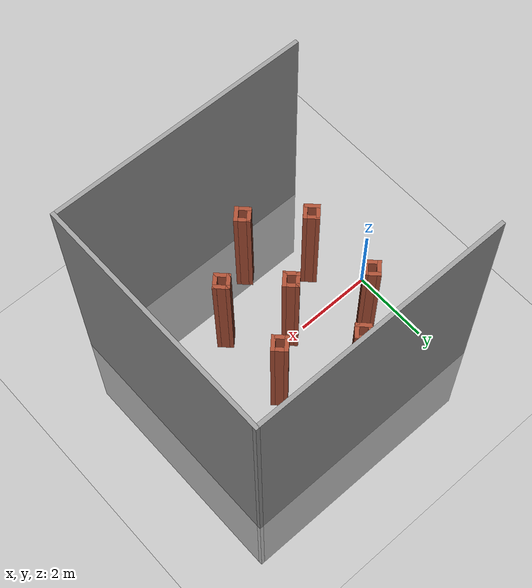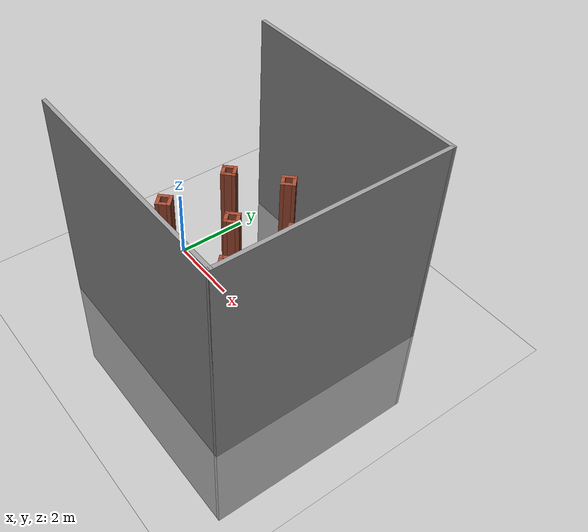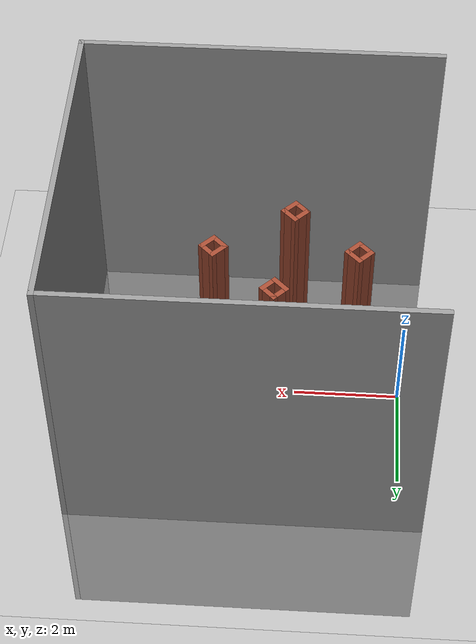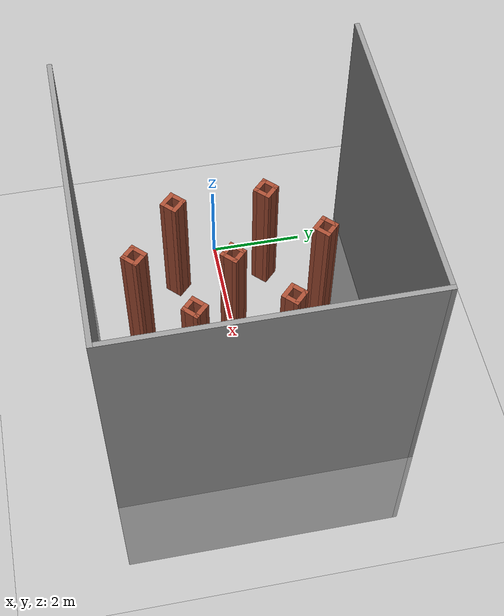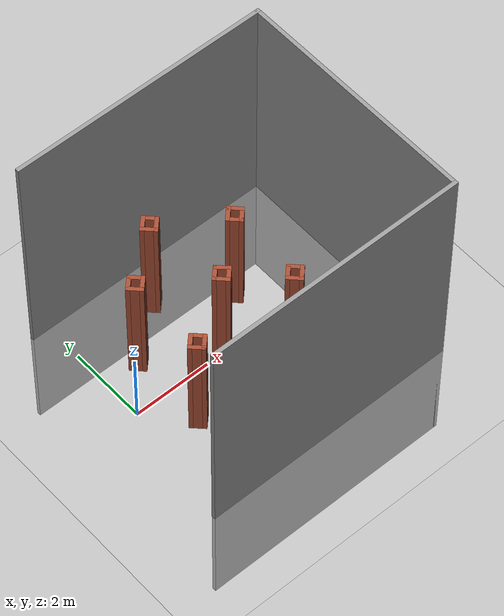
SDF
<sdf version="1.7">
 <world name="default">
  <light name="sun" type="directional">
   <pose>0 0 10 0 -0 0</pose>
   <diffuse>0.8 0.8 0.8 1</diffuse>
   <specular>0.2 0.2 0.2 1</specular>
   <attenuation>
    <range>1000</range>
    <constant>0.9</constant>
    <linear>0.01</linear>
    <quadratic>0.001</quadratic>
   </attenuation>
   <direction>-0.5 0.1 -0.9</direction>
   <spot><inner_angle>0</inner_angle><outer_angle>0</outer_angle><falloff>0</falloff></spot>
  </light>
  <model name="ground_plane">
   <static>1</static>
   <link name="link">
    <collision name="collision">
     <geometry><plane><normal>0 0 1</normal><size>100 100</size></plane></geometry>
     <surface>
      <contact><collide_bitmask>65535</collide_bitmask></contact>
      <friction><ode><mu>100</mu><mu2>50</mu2></ode></friction>
     </surface>
    </collision>
    <visual name="visual">
     <cast_shadows>0</cast_shadows>
     <geometry><plane><normal>0 0 1</normal><size>100 100</size></plane></geometry>
     <material>
      <script><uri>file://media/materials/scripts/gazebo.material</uri><name>Gazebo/Grey</name></script>
     </material>
    </visual>
   </link>
  </model>
  <gravity>0 0 -9.8</gravity>
  <magnetic_field>6e-06 2.3e-05 -4.2e-05</magnetic_field>
  <atmosphere type="adiabatic"/>
  <physics type="ode">
   <max_step_size>0.001</max_step_size>
   <real_time_factor>1</real_time_factor>
   <real_time_update_rate>1000</real_time_update_rate>
  </physics>
  <scene><ambient>0.4 0.4 0.4 1</ambient><background>0.7 0.7 0.7 1</background><shadows>1</shadows></scene>
  <spherical_coordinates>
   <surface_model>EARTH_WGS84</surface_model>
   <latitude_deg>0</latitude_deg>
   <longitude_deg>0</longitude_deg>
   <elevation>0</elevation>
   <heading_deg>0</heading_deg>
  </spherical_coordinates>
  <model name="outer_walls">
   <link name="Wall_4">
    <pose>0 -3.05 0 0 -0 0</pose>
    <inertial>
     <mass>1</mass>
     <inertia><ixx>1</ixx><ixy>0</ixy><ixz>0</ixz><iyy>1</iyy><iyz>0</iyz><izz>1</izz></inertia>
    </inertial>
    <visual name="Wall_4_Visual">
     <pose>0 0 1.5 0 -0 0</pose>
     <geometry><box><size>6.6 0.1 9</size></box></geometry>
     <material>
      <script><uri>file://media/materials/scripts/gazebo.material</uri><name>Gazebo/Grey</name></script>
      <ambient>1 1 1 1</ambient>
      <shader type="pixel"><normal_map>__default__</normal_map></shader>
      <diffuse>0.7 0.7 0.7 1</diffuse>
      <specular>0.01 0.01 0.01 1</specular>
      <emissive>0 0 0 1</emissive>
     </material>
     <meta><layer>0</layer></meta>
    </visual>
    <collision name="Wall_4_Collision">
     <pose>0 0 1.5 0 -0 0</pose>
     <geometry><box><size>6.6 0.1 9</size></box></geometry>
     <surface>
      <friction>
       <ode><mu>1</mu><mu2>1</mu2><fdir1>0 0 0</fdir1><slip1>0</slip1><slip2>0</slip2></ode>
       <torsional>
        <coefficient>1</coefficient>
        <patch_radius>0</patch_radius>
        <surface_radius>0</surface_radius>
        <use_patch_radius>1</use_patch_radius>
        <ode><slip>0</slip></ode>
       </torsional>
      </friction>
      <bounce><restitution_coefficient>0</restitution_coefficient><threshold>1e+06</threshold></bounce>
      <contact>
       <collide_without_contact>0</collide_without_contact>
       <collide_without_contact_bitmask>1</collide_without_contact_bitmask>
       <collide_bitmask>1</collide_bitmask>
       <ode>
        <soft_cfm>0</soft_cfm>
        <soft_erp>0.2</soft_erp>
        <kp>1e+13</kp>
        <kd>1</kd>
        <max_vel>0.01</max_vel>
        <min_depth>0</min_depth>
       </ode>
       <bullet>
        <split_impulse>1</split_impulse>
        <split_impulse_penetration_threshold>-0.01</split_impulse_penetration_threshold>
        <soft_cfm>0</soft_cfm>
        <soft_erp>0.2</soft_erp>
        <kp>1e+13</kp>
        <kd>1</kd>
       </bullet>
      </contact>
     </surface>
    </collision>
   </link>
   <link name="Wall_6">
    <pose>3.25 0 0 0 -0 1.5708</pose>
    <inertial>
     <mass>1</mass>
     <inertia><ixx>1</ixx><ixy>0</ixy><ixz>0</ixz><iyy>1</iyy><iyz>0</iyz><izz>1</izz></inertia>
    </inertial>
    <visual name="Wall_6_Visual">
     <pose>0 0 1.5 0 -0 0</pose>
     <geometry><box><size>6.2 0.1 9</size></box></geometry>
     <material>
      <script><uri>file://media/materials/scripts/gazebo.material</uri><name>Gazebo/Grey</name></script>
      <ambient>1 1 1 1</ambient>
      <shader type="pixel"><normal_map>__default__</normal_map></shader>
      <diffuse>0.7 0.7 0.7 1</diffuse>
      <specular>0.01 0.01 0.01 1</specular>
      <emissive>0 0 0 1</emissive>
     </material>
     <meta><layer>0</layer></meta>
    </visual>
    <collision name="Wall_6_Collision">
     <pose>0 0 1.5 0 -0 0</pose>
     <geometry><box><size>6.2 0.1 9</size></box></geometry>
     <surface>
      <friction>
       <ode><mu>1</mu><mu2>1</mu2><fdir1>0 0 0</fdir1><slip1>0</slip1><slip2>0</slip2></ode>
       <torsional>
        <coefficient>1</coefficient>
        <patch_radius>0</patch_radius>
        <surface_radius>0</surface_radius>
        <use_patch_radius>1</use_patch_radius>
        <ode><slip>0</slip></ode>
       </torsional>
      </friction>
      <bounce><restitution_coefficient>0</restitution_coefficient><threshold>1e+06</threshold></bounce>
      <contact>
       <collide_without_contact>0</collide_without_contact>
       <collide_without_contact_bitmask>1</collide_without_contact_bitmask>
       <collide_bitmask>1</collide_bitmask>
       <ode>
        <soft_cfm>0</soft_cfm>
        <soft_erp>0.2</soft_erp>
        <kp>1e+13</kp>
        <kd>1</kd>
        <max_vel>0.01</max_vel>
        <min_depth>0</min_depth>
       </ode>
       <bullet>
        <split_impulse>1</split_impulse>
        <split_impulse_penetration_threshold>-0.01</split_impulse_penetration_threshold>
        <soft_cfm>0</soft_cfm>
        <soft_erp>0.2</soft_erp>
        <kp>1e+13</kp>
        <kd>1</kd>
       </bullet>
      </contact>
     </surface>
    </collision>
   </link>
   <link name="Wall_8">
    <pose>0 3.05 0 0 -0 3.14159</pose>
    <inertial>
     <mass>1</mass>
     <inertia><ixx>1</ixx><ixy>0</ixy><ixz>0</ixz><iyy>1</iyy><iyz>0</iyz><izz>1</izz></inertia>
    </inertial>
    <visual name="Wall_8_Visual">
     <pose>0 0 1.5 0 -0 0</pose>
     <geometry><box><size>6.6 0.1 9</size></box></geometry>
     <material>
      <script><uri>file://media/materials/scripts/gazebo.material</uri><name>Gazebo/Grey</name></script>
      <ambient>1 1 1 1</ambient>
      <shader type="pixel"><normal_map>__default__</normal_map></shader>
      <diffuse>0.7 0.7 0.7 1</diffuse>
      <specular>0.01 0.01 0.01 1</specular>
      <emissive>0 0 0 1</emissive>
     </material>
     <meta><layer>0</layer></meta>
    </visual>
    <collision name="Wall_8_Collision">
     <pose>0 0 1.5 0 -0 0</pose>
     <geometry><box><size>6.6 0.1 9</size></box></geometry>
     <surface>
      <friction>
       <ode><mu>1</mu><mu2>1</mu2><fdir1>0 0 0</fdir1><slip1>0</slip1><slip2>0</slip2></ode>
       <torsional>
        <coefficient>1</coefficient>
        <patch_radius>0</patch_radius>
        <surface_radius>0</surface_radius>
        <use_patch_radius>1</use_patch_radius>
        <ode><slip>0</slip></ode>
       </torsional>
      </friction>
      <bounce><restitution_coefficient>0</restitution_coefficient><threshold>1e+06</threshold></bounce>
      <contact>
       <collide_without_contact>0</collide_without_contact>
       <collide_without_contact_bitmask>1</collide_without_contact_bitmask>
       <collide_bitmask>1</collide_bitmask>
       <ode>
        <soft_cfm>0</soft_cfm>
        <soft_erp>0.2</soft_erp>
        <kp>1e+13</kp>
        <kd>1</kd>
        <max_vel>0.01</max_vel>
        <min_depth>0</min_depth>
       </ode>
       <bullet>
        <split_impulse>1</split_impulse>
        <split_impulse_penetration_threshold>-0.01</split_impulse_penetration_threshold>
        <soft_cfm>0</soft_cfm>
        <soft_erp>0.2</soft_erp>
        <kp>1e+13</kp>
        <kd>1</kd>
       </bullet>
      </contact>
     </surface>
    </collision>
   </link>
   <static>1</static>
   <pose>2.84181 0 0 0 -0 0</pose>
  </model>
  <model name="column">
   <pose>2.42796 2.81642 0 0 -0 0</pose>
   <link name="Wall_28">
    <collision name="Wall_28_Collision">
     <geometry><box><size>0.4 0.1 3</size></box></geometry>
     <pose>0 0 1.5 0 -0 0</pose>
    </collision>
    <visual name="Wall_28_Visual">
     <pose>0 0 1.5 0 -0 0</pose>
     <geometry><box><size>0.4 0.1 3</size></box></geometry>
     <material>
      <script><uri>file://media/materials/scripts/gazebo.material</uri><name>Gazebo/Bricks</name></script>
      <ambient>1 1 1 1</ambient>
     </material>
     <meta><layer>0</layer></meta>
    </visual>
    <pose>-0.106 -2.70861 0 0 -0 -2.35619</pose>
   </link>
   <link name="Wall_30">
    <collision name="Wall_30_Collision">
     <geometry><box><size>0.4 0.1 3</size></box></geometry>
     <pose>0 0 1.5 0 -0 0</pose>
    </collision>
    <visual name="Wall_30_Visual">
     <pose>0 0 1.5 0 -0 0</pose>
     <geometry><box><size>0.4 0.1 3</size></box></geometry>
     <material>
      <script><uri>file://media/materials/scripts/gazebo.material</uri><name>Gazebo/Bricks</name></script>
      <ambient>1 1 1 1</ambient>
     </material>
     <meta><layer>0</layer></meta>
    </visual>
    <pose>-0.106 -2.92061 0 0 -0 -0.785398</pose>
   </link>
   <link name="Wall_32">
    <collision name="Wall_32_Collision">
     <geometry><box><size>0.4 0.1 3</size></box></geometry>
     <pose>0 0 1.5 0 -0 0</pose>
    </collision>
    <visual name="Wall_32_Visual">
     <pose>0 0 1.5 0 -0 0</pose>
     <geometry><box><size>0.4 0.1 3</size></box></geometry>
     <material>
      <script><uri>file://media/materials/scripts/gazebo.material</uri><name>Gazebo/Bricks</name></script>
      <ambient>1 1 1 1</ambient>
     </material>
     <meta><layer>0</layer></meta>
    </visual>
    <pose>0.106 -2.92061 0 0 -0 0.785398</pose>
   </link>
   <link name="Wall_5">
    <collision name="Wall_5_Collision">
     <geometry><box><size>0.4 0.1 3</size></box></geometry>
     <pose>0 0 1.5 0 -0 0</pose>
    </collision>
    <visual name="Wall_5_Visual">
     <pose>0 0 1.5 0 -0 0</pose>
     <geometry><box><size>0.4 0.1 3</size></box></geometry>
     <material>
      <script><uri>file://media/materials/scripts/gazebo.material</uri><name>Gazebo/Bricks</name></script>
      <ambient>1 1 1 1</ambient>
     </material>
     <meta><layer>0</layer></meta>
    </visual>
    <pose>0.106 -2.70861 0 0 -0 -0.785398</pose>
   </link>
   <static>1</static>
  </model>
  <model name="column_clone">
   <pose>0.895986 1.82118 0 0 -0 0</pose>
   <link name="Wall_28">
    <collision name="Wall_28_Collision">
     <geometry><box><size>0.4 0.1 3</size></box></geometry>
     <pose>0 0 1.5 0 -0 0</pose>
    </collision>
    <visual name="Wall_28_Visual">
     <pose>0 0 1.5 0 -0 0</pose>
     <geometry><box><size>0.4 0.1 3</size></box></geometry>
     <material>
      <script><uri>file://media/materials/scripts/gazebo.material</uri><name>Gazebo/Bricks</name></script>
      <ambient>1 1 1 1</ambient>
     </material>
     <meta><layer>0</layer></meta>
    </visual>
    <pose>-0.106 -2.70861 0 0 -0 -2.35619</pose>
   </link>
   <link name="Wall_30">
    <collision name="Wall_30_Collision">
     <geometry><box><size>0.4 0.1 3</size></box></geometry>
     <pose>0 0 1.5 0 -0 0</pose>
    </collision>
    <visual name="Wall_30_Visual">
     <pose>0 0 1.5 0 -0 0</pose>
     <geometry><box><size>0.4 0.1 3</size></box></geometry>
     <material>
      <script><uri>file://media/materials/scripts/gazebo.material</uri><name>Gazebo/Bricks</name></script>
      <ambient>1 1 1 1</ambient>
     </material>
     <meta><layer>0</layer></meta>
    </visual>
    <pose>-0.106 -2.92061 0 0 -0 -0.785398</pose>
   </link>
   <link name="Wall_32">
    <collision name="Wall_32_Collision">
     <geometry><box><size>0.4 0.1 3</size></box></geometry>
     <pose>0 0 1.5 0 -0 0</pose>
    </collision>
    <visual name="Wall_32_Visual">
     <pose>0 0 1.5 0 -0 0</pose>
     <geometry><box><size>0.4 0.1 3</size></box></geometry>
     <material>
      <script><uri>file://media/materials/scripts/gazebo.material</uri><name>Gazebo/Bricks</name></script>
      <ambient>1 1 1 1</ambient>
     </material>
     <meta><layer>0</layer></meta>
    </visual>
    <pose>0.106 -2.92061 0 0 -0 0.785398</pose>
   </link>
   <link name="Wall_5">
    <collision name="Wall_5_Collision">
     <geometry><box><size>0.4 0.1 3</size></box></geometry>
     <pose>0 0 1.5 0 -0 0</pose>
    </collision>
    <visual name="Wall_5_Visual">
     <pose>0 0 1.5 0 -0 0</pose>
     <geometry><box><size>0.4 0.1 3</size></box></geometry>
     <material>
      <script><uri>file://media/materials/scripts/gazebo.material</uri><name>Gazebo/Bricks</name></script>
      <ambient>1 1 1 1</ambient>
     </material>
     <meta><layer>0</layer></meta>
    </visual>
    <pose>0.106 -2.70861 0 0 -0 -0.785398</pose>
   </link>
   <static>1</static>
  </model>
  <model name="column_clone_clone">
   <pose>0.881789 3.81285 0 0 -0 0</pose>
   <link name="Wall_28">
    <collision name="Wall_28_Collision">
     <geometry><box><size>0.4 0.1 3</size></box></geometry>
     <pose>0 0 1.5 0 -0 0</pose>
    </collision>
    <visual name="Wall_28_Visual">
     <pose>0 0 1.5 0 -0 0</pose>
     <geometry><box><size>0.4 0.1 3</size></box></geometry>
     <material>
      <script><uri>file://media/materials/scripts/gazebo.material</uri><name>Gazebo/Bricks</name></script>
      <ambient>1 1 1 1</ambient>
     </material>
     <meta><layer>0</layer></meta>
    </visual>
    <pose>-0.106 -2.70861 0 0 -0 -2.35619</pose>
   </link>
   <link name="Wall_30">
    <collision name="Wall_30_Collision">
     <geometry><box><size>0.4 0.1 3</size></box></geometry>
     <pose>0 0 1.5 0 -0 0</pose>
    </collision>
    <visual name="Wall_30_Visual">
     <pose>0 0 1.5 0 -0 0</pose>
     <geometry><box><size>0.4 0.1 3</size></box></geometry>
     <material>
      <script><uri>file://media/materials/scripts/gazebo.material</uri><name>Gazebo/Bricks</name></script>
      <ambient>1 1 1 1</ambient>
     </material>
     <meta><layer>0</layer></meta>
    </visual>
    <pose>-0.106 -2.92061 0 0 -0 -0.785398</pose>
   </link>
   <link name="Wall_32">
    <collision name="Wall_32_Collision">
     <geometry><box><size>0.4 0.1 3</size></box></geometry>
     <pose>0 0 1.5 0 -0 0</pose>
    </collision>
    <visual name="Wall_32_Visual">
     <pose>0 0 1.5 0 -0 0</pose>
     <geometry><box><size>0.4 0.1 3</size></box></geometry>
     <material>
      <script><uri>file://media/materials/scripts/gazebo.material</uri><name>Gazebo/Bricks</name></script>
      <ambient>1 1 1 1</ambient>
     </material>
     <meta><layer>0</layer></meta>
    </visual>
    <pose>0.106 -2.92061 0 0 -0 0.785398</pose>
   </link>
   <link name="Wall_5">
    <collision name="Wall_5_Collision">
     <geometry><box><size>0.4 0.1 3</size></box></geometry>
     <pose>0 0 1.5 0 -0 0</pose>
    </collision>
    <visual name="Wall_5_Visual">
     <pose>0 0 1.5 0 -0 0</pose>
     <geometry><box><size>0.4 0.1 3</size></box></geometry>
     <material>
      <script><uri>file://media/materials/scripts/gazebo.material</uri><name>Gazebo/Bricks</name></script>
      <ambient>1 1 1 1</ambient>
     </material>
     <meta><layer>0</layer></meta>
    </visual>
    <pose>0.106 -2.70861 0 0 -0 -0.785398</pose>
   </link>
   <static>1</static>
  </model>
  <model name="column_clone_clone_clone">
   <pose>2.11512 4.81865 0 0 -0 0</pose>
   <link name="Wall_28">
    <collision name="Wall_28_Collision">
     <geometry><box><size>0.4 0.1 3</size></box></geometry>
     <pose>0 0 1.5 0 -0 0</pose>
    </collision>
    <visual name="Wall_28_Visual">
     <pose>0 0 1.5 0 -0 0</pose>
     <geometry><box><size>0.4 0.1 3</size></box></geometry>
     <material>
      <script><uri>file://media/materials/scripts/gazebo.material</uri><name>Gazebo/Bricks</name></script>
      <ambient>1 1 1 1</ambient>
     </material>
     <meta><layer>0</layer></meta>
    </visual>
    <pose>-0.106 -2.70861 0 0 -0 -2.35619</pose>
   </link>
   <link name="Wall_30">
    <collision name="Wall_30_Collision">
     <geometry><box><size>0.4 0.1 3</size></box></geometry>
     <pose>0 0 1.5 0 -0 0</pose>
    </collision>
    <visual name="Wall_30_Visual">
     <pose>0 0 1.5 0 -0 0</pose>
     <geometry><box><size>0.4 0.1 3</size></box></geometry>
     <material>
      <script><uri>file://media/materials/scripts/gazebo.material</uri><name>Gazebo/Bricks</name></script>
      <ambient>1 1 1 1</ambient>
     </material>
     <meta><layer>0</layer></meta>
    </visual>
    <pose>-0.106 -2.92061 0 0 -0 -0.785398</pose>
   </link>
   <link name="Wall_32">
    <collision name="Wall_32_Collision">
     <geometry><box><size>0.4 0.1 3</size></box></geometry>
     <pose>0 0 1.5 0 -0 0</pose>
    </collision>
    <visual name="Wall_32_Visual">
     <pose>0 0 1.5 0 -0 0</pose>
     <geometry><box><size>0.4 0.1 3</size></box></geometry>
     <material>
      <script><uri>file://media/materials/scripts/gazebo.material</uri><name>Gazebo/Bricks</name></script>
      <ambient>1 1 1 1</ambient>
     </material>
     <meta><layer>0</layer></meta>
    </visual>
    <pose>0.106 -2.92061 0 0 -0 0.785398</pose>
   </link>
   <link name="Wall_5">
    <collision name="Wall_5_Collision">
     <geometry><box><size>0.4 0.1 3</size></box></geometry>
     <pose>0 0 1.5 0 -0 0</pose>
    </collision>
    <visual name="Wall_5_Visual">
     <pose>0 0 1.5 0 -0 0</pose>
     <geometry><box><size>0.4 0.1 3</size></box></geometry>
     <material>
      <script><uri>file://media/materials/scripts/gazebo.material</uri><name>Gazebo/Bricks</name></script>
      <ambient>1 1 1 1</ambient>
     </material>
     <meta><layer>0</layer></meta>
    </visual>
    <pose>0.106 -2.70861 0 0 -0 -0.785398</pose>
   </link>
   <static>1</static>
  </model>
  <model name="column_clone_clone_0">
   <pose>2.12364 0.821425 0 0 -0 0</pose>
   <link name="Wall_28">
    <collision name="Wall_28_Collision">
     <geometry><box><size>0.4 0.1 3</size></box></geometry>
     <pose>0 0 1.5 0 -0 0</pose>
    </collision>
    <visual name="Wall_28_Visual">
     <pose>0 0 1.5 0 -0 0</pose>
     <geometry><box><size>0.4 0.1 3</size></box></geometry>
     <material>
      <script><uri>file://media/materials/scripts/gazebo.material</uri><name>Gazebo/Bricks</name></script>
      <ambient>1 1 1 1</ambient>
     </material>
     <meta><layer>0</layer></meta>
    </visual>
    <pose>-0.106 -2.70861 0 0 -0 -2.35619</pose>
   </link>
   <link name="Wall_30">
    <collision name="Wall_30_Collision">
     <geometry><box><size>0.4 0.1 3</size></box></geometry>
     <pose>0 0 1.5 0 -0 0</pose>
    </collision>
    <visual name="Wall_30_Visual">
     <pose>0 0 1.5 0 -0 0</pose>
     <geometry><box><size>0.4 0.1 3</size></box></geometry>
     <material>
      <script><uri>file://media/materials/scripts/gazebo.material</uri><name>Gazebo/Bricks</name></script>
      <ambient>1 1 1 1</ambient>
     </material>
     <meta><layer>0</layer></meta>
    </visual>
    <pose>-0.106 -2.92061 0 0 -0 -0.785398</pose>
   </link>
   <link name="Wall_32">
    <collision name="Wall_32_Collision">
     <geometry><box><size>0.4 0.1 3</size></box></geometry>
     <pose>0 0 1.5 0 -0 0</pose>
    </collision>
    <visual name="Wall_32_Visual">
     <pose>0 0 1.5 0 -0 0</pose>
     <geometry><box><size>0.4 0.1 3</size></box></geometry>
     <material>
      <script><uri>file://media/materials/scripts/gazebo.material</uri><name>Gazebo/Bricks</name></script>
      <ambient>1 1 1 1</ambient>
     </material>
     <meta><layer>0</layer></meta>
    </visual>
    <pose>0.106 -2.92061 0 0 -0 0.785398</pose>
   </link>
   <link name="Wall_5">
    <collision name="Wall_5_Collision">
     <geometry><box><size>0.4 0.1 3</size></box></geometry>
     <pose>0 0 1.5 0 -0 0</pose>
    </collision>
    <visual name="Wall_5_Visual">
     <pose>0 0 1.5 0 -0 0</pose>
     <geometry><box><size>0.4 0.1 3</size></box></geometry>
     <material>
      <script><uri>file://media/materials/scripts/gazebo.material</uri><name>Gazebo/Bricks</name></script>
      <ambient>1 1 1 1</ambient>
     </material>
     <meta><layer>0</layer></meta>
    </visual>
    <pose>0.106 -2.70861 0 0 -0 -0.785398</pose>
   </link>
   <static>1</static>
  </model>
  <model name="column_clone_clone_clone_clone">
   <pose>3.667 3.81953 0 0 -0 0</pose>
   <link name="Wall_28">
    <collision name="Wall_28_Collision">
     <geometry><box><size>0.4 0.1 3</size></box></geometry>
     <pose>0 0 1.5 0 -0 0</pose>
    </collision>
    <visual name="Wall_28_Visual">
     <pose>0 0 1.5 0 -0 0</pose>
     <geometry><box><size>0.4 0.1 3</size></box></geometry>
     <material>
      <script><uri>file://media/materials/scripts/gazebo.material</uri><name>Gazebo/Bricks</name></script>
      <ambient>1 1 1 1</ambient>
     </material>
     <meta><layer>0</layer></meta>
    </visual>
    <pose>-0.106 -2.70861 0 0 -0 -2.35619</pose>
   </link>
   <link name="Wall_30">
    <collision name="Wall_30_Collision">
     <geometry><box><size>0.4 0.1 3</size></box></geometry>
     <pose>0 0 1.5 0 -0 0</pose>
    </collision>
    <visual name="Wall_30_Visual">
     <pose>0 0 1.5 0 -0 0</pose>
     <geometry><box><size>0.4 0.1 3</size></box></geometry>
     <material>
      <script><uri>file://media/materials/scripts/gazebo.material</uri><name>Gazebo/Bricks</name></script>
      <ambient>1 1 1 1</ambient>
     </material>
     <meta><layer>0</layer></meta>
    </visual>
    <pose>-0.106 -2.92061 0 0 -0 -0.785398</pose>
   </link>
   <link name="Wall_32">
    <collision name="Wall_32_Collision">
     <geometry><box><size>0.4 0.1 3</size></box></geometry>
     <pose>0 0 1.5 0 -0 0</pose>
    </collision>
    <visual name="Wall_32_Visual">
     <pose>0 0 1.5 0 -0 0</pose>
     <geometry><box><size>0.4 0.1 3</size></box></geometry>
     <material>
      <script><uri>file://media/materials/scripts/gazebo.material</uri><name>Gazebo/Bricks</name></script>
      <ambient>1 1 1 1</ambient>
     </material>
     <meta><layer>0</layer></meta>
    </visual>
    <pose>0.106 -2.92061 0 0 -0 0.785398</pose>
   </link>
   <link name="Wall_5">
    <collision name="Wall_5_Collision">
     <geometry><box><size>0.4 0.1 3</size></box></geometry>
     <pose>0 0 1.5 0 -0 0</pose>
    </collision>
    <visual name="Wall_5_Visual">
     <pose>0 0 1.5 0 -0 0</pose>
     <geometry><box><size>0.4 0.1 3</size></box></geometry>
     <material>
      <script><uri>file://media/materials/scripts/gazebo.material</uri><name>Gazebo/Bricks</name></script>
      <ambient>1 1 1 1</ambient>
     </material>
     <meta><layer>0</layer></meta>
    </visual>
    <pose>0.106 -2.70861 0 0 -0 -0.785398</pose>
   </link>
   <static>1</static>
  </model>
  <model name="column_clone_clone_clone_clone_0">
   <pose>3.61197 1.81912 0 0 -0 0</pose>
   <link name="Wall_28">
    <collision name="Wall_28_Collision">
     <geometry><box><size>0.4 0.1 3</size></box></geometry>
     <pose>0 0 1.5 0 -0 0</pose>
    </collision>
    <visual name="Wall_28_Visual">
     <pose>0 0 1.5 0 -0 0</pose>
     <geometry><box><size>0.4 0.1 3</size></box></geometry>
     <material>
      <script><uri>file://media/materials/scripts/gazebo.material</uri><name>Gazebo/Bricks</name></script>
      <ambient>1 1 1 1</ambient>
     </material>
     <meta><layer>0</layer></meta>
    </visual>
    <pose>-0.106 -2.70861 0 0 -0 -2.35619</pose>
   </link>
   <link name="Wall_30">
    <collision name="Wall_30_Collision">
     <geometry><box><size>0.4 0.1 3</size></box></geometry>
     <pose>0 0 1.5 0 -0 0</pose>
    </collision>
    <visual name="Wall_30_Visual">
     <pose>0 0 1.5 0 -0 0</pose>
     <geometry><box><size>0.4 0.1 3</size></box></geometry>
     <material>
      <script><uri>file://media/materials/scripts/gazebo.material</uri><name>Gazebo/Bricks</name></script>
      <ambient>1 1 1 1</ambient>
     </material>
     <meta><layer>0</layer></meta>
    </visual>
    <pose>-0.106 -2.92061 0 0 -0 -0.785398</pose>
   </link>
   <link name="Wall_32">
    <collision name="Wall_32_Collision">
     <geometry><box><size>0.4 0.1 3</size></box></geometry>
     <pose>0 0 1.5 0 -0 0</pose>
    </collision>
    <visual name="Wall_32_Visual">
     <pose>0 0 1.5 0 -0 0</pose>
     <geometry><box><size>0.4 0.1 3</size></box></geometry>
     <material>
      <script><uri>file://media/materials/scripts/gazebo.material</uri><name>Gazebo/Bricks</name></script>
      <ambient>1 1 1 1</ambient>
     </material>
     <meta><layer>0</layer></meta>
    </visual>
    <pose>0.106 -2.92061 0 0 -0 0.785398</pose>
   </link>
   <link name="Wall_5">
    <collision name="Wall_5_Collision">
     <geometry><box><size>0.4 0.1 3</size></box></geometry>
     <pose>0 0 1.5 0 -0 0</pose>
    </collision>
    <visual name="Wall_5_Visual">
     <pose>0 0 1.5 0 -0 0</pose>
     <geometry><box><size>0.4 0.1 3</size></box></geometry>
     <material>
      <script><uri>file://media/materials/scripts/gazebo.material</uri><name>Gazebo/Bricks</name></script>
      <ambient>1 1 1 1</ambient>
     </material>
     <meta><layer>0</layer></meta>
    </visual>
    <pose>0.106 -2.70861 0 0 -0 -0.785398</pose>
   </link>
   <static>1</static>
  </model>
 </world>
</sdf>
